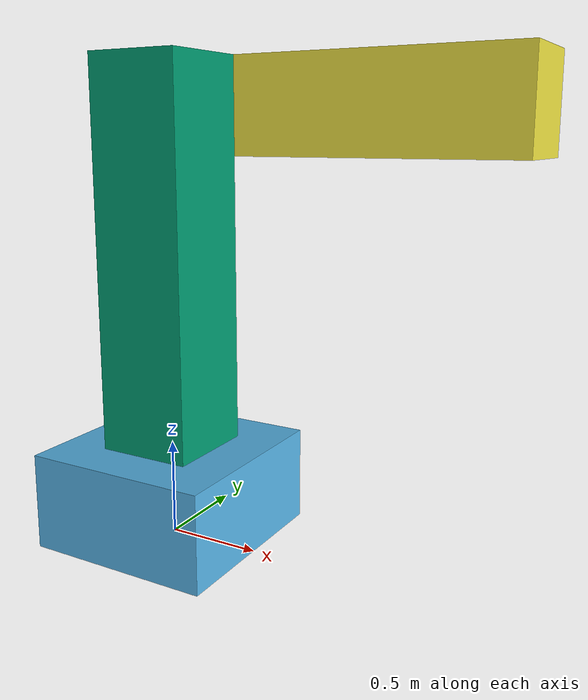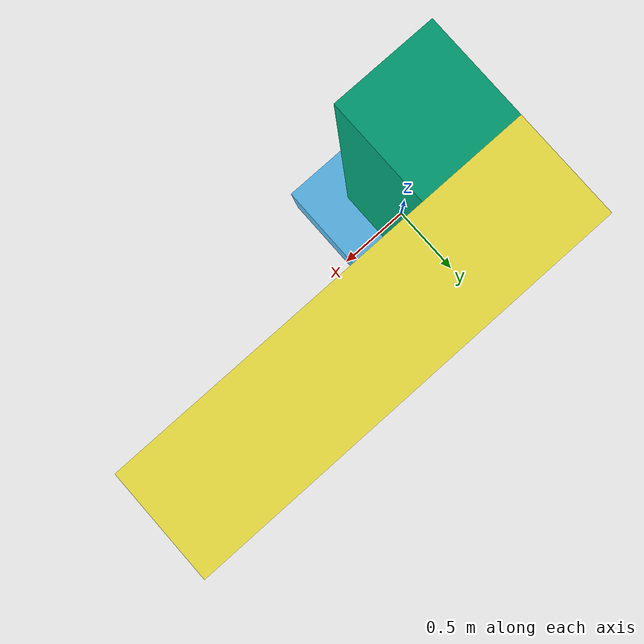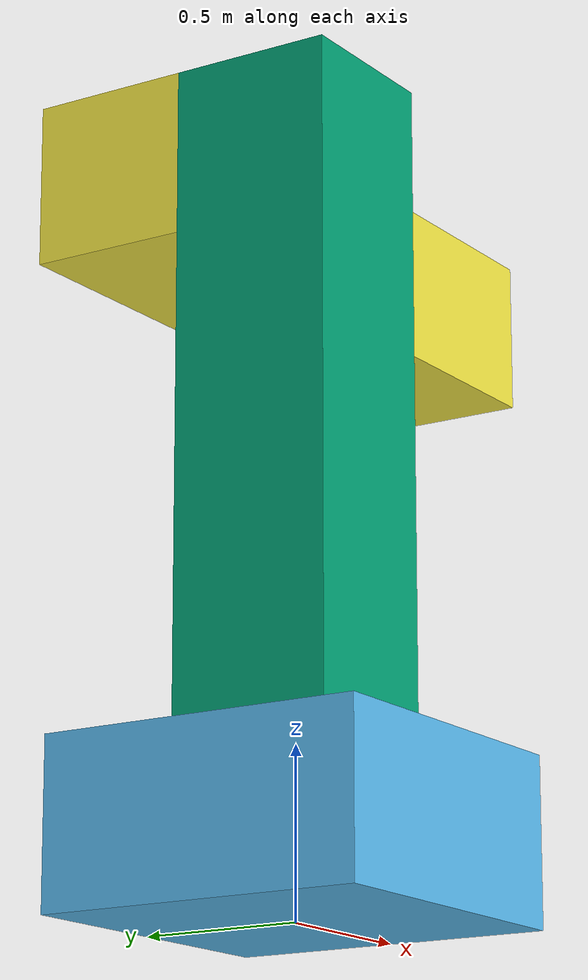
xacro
<?xml version="1.0"?>

<robot name="rail" xmlns:xacro="http://www.ros.org/wiki/xacro">
<xacro:property name="PI" value="3.1415926535897931"/>

<gazebo>
    <plugin name="gazebo_ros_control" filename="libgazebo_ros_control.so">
      <robotNamespace>/rail</robotNamespace>
      <robotSimType>gazebo_ros_control/DefaultRobotHWSim</robotSimType>
    </plugin>
</gazebo>

<gazebo reference="vertical_strut">
    <mu1>0.2</mu1>
    <mu2>0.2</mu2>
</gazebo>

<gazebo reference="barrel">
    <mu1>0.2</mu1>
    <mu2>0.2</mu2>
</gazebo>

<link name="world"/>

<joint name="world_fixed" type="fixed">
    <origin xyz="0 0 0.25" rpy="0 0 0"/>
    <parent link="world"/>
    <child link="base"/>

</joint>

<link name="base">
    <collision>
        <geometry>
            <box size="1 1 0.5"/>
        </geometry>
    </collision>

    <visual>
        <geometry>
            <box size="1 1 0.5"/>
        </geometry>
    </visual>

    <inertial>
        <mass value="10.0"/>
        <inertia
	    ixx="${10 / 12.0 * (1*1 + 0.5*0.5)}" ixy="0.0" ixz="0.0"
	    iyy="${10 / 12.0 * (0.5*0.5 + 1*1)}" iyz="0.0"
	    izz="${10 / 12.0 * (1*1 + 1*1)}"/>
    </inertial>
</link>

<joint name="yaw" type="continuous">
    <parent link="base"/>
    <child link="vertical_strut"/>
    <origin xyz="0 0 1.25" rpy="0 0 0"/>
    <limit effort="10000" velocity="10.0"/>
    <axis xyz="0 0 1"/>
</joint>

<link name="vertical_strut">
    <collision>
        <geometry>
            <box size="0.5 0.5 2"/>
        </geometry>
    </collision>

    <visual>
        <geometry>
            <box size="0.5 0.5 2"/>
        </geometry>
    </visual>

    <inertial>
        <mass value="1.0"/>
        <inertia
	    ixx="${1 / 12.0 * (0.5*0.5 + 2*2)}" ixy="0.0" ixz="0.0"
	    iyy="${1 / 12.0 * (2*2 + 0.5*0.5)}" iyz="0.0"
	    izz="${1 / 12.0 * (0.5*0.5 + 0.5*0.5)}"/>
    </inertial>
</link>

<joint name="pitch" type="continuous">
    <parent link="vertical_strut"/>
    <child link="barrel"/>
    <origin xyz="0 0.5 0.75" rpy="0 0 0"/>
    <limit effort="10000" velocity="10.0"/>
    <axis xyz="0 1 0"/>
</joint>

<link name="barrel">
    <collision>
        <origin xyz="0.75 0 0" rpy="0 ${(PI)/2} 0"/>
        <geometry>
            <box size="0.5 0.5 2"/>
        </geometry>
    </collision>

    <visual>
        <origin xyz="0.75 0 0" rpy="0 ${(PI)/2} 0"/>
        <geometry>
            <box size="0.5 0.5 2"/>
        </geometry>
    </visual>

    <inertial>
        <origin xyz="0.75 0 0" rpy="0 ${(PI)/2} 0"/>
        <mass value="0.5"/>
        <inertia
	    ixx="${0.5 / 12.0 * (0.5*0.5 + 2*2)}" ixy="0.0" ixz="0.0"
	    iyy="${0.5 / 12.0 * (2*2 + 0.5*0.5)}" iyz="0.0"
	    izz="${0.5 / 12.0 * (0.5*0.5 + 0.5*0.5)}"/>
    </inertial>
</link>

<transmission name="yaw_transmission">
    <type>transmission_interface/SimpleTransmission</type>
    <joint name="yaw">
      <hardwareInterface>hardware_interface/EffortJointInterface</hardwareInterface>
    </joint>
    <actuator name="motor2">
      <hardwareInterface>hardware_interface/EffortJointInterface</hardwareInterface>
      <mechanicalReduction>1</mechanicalReduction>
    </actuator>
</transmission>

<transmission name="pitch_transmission">
    <type>transmission_interface/SimpleTransmission</type>
    <joint name="pitch">
      <hardwareInterface>hardware_interface/EffortJointInterface</hardwareInterface>
    </joint>
    <actuator name="motor2">
      <hardwareInterface>hardware_interface/EffortJointInterface</hardwareInterface>
      <mechanicalReduction>1</mechanicalReduction>
    </actuator>
</transmission>

</robot>
